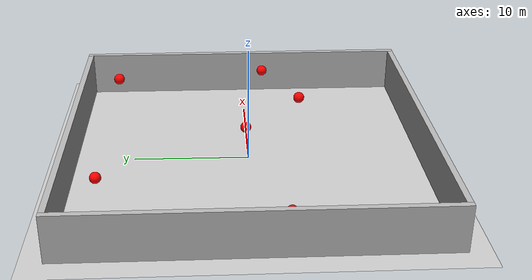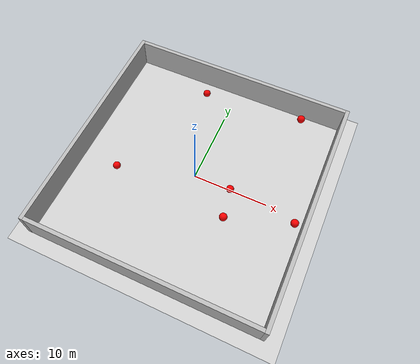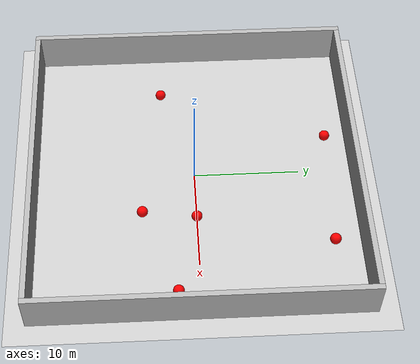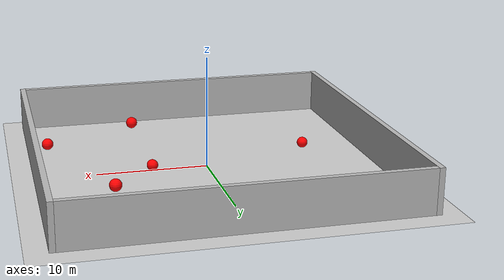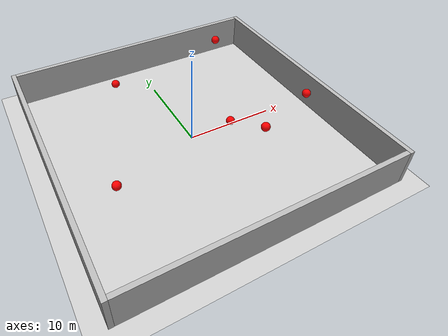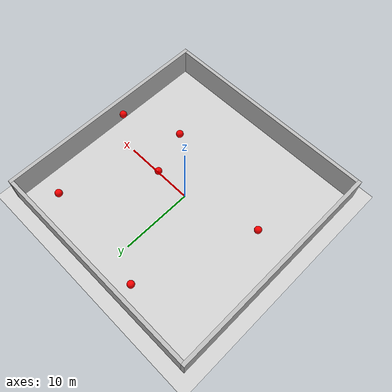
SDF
<?xml version="1.0"?>
<sdf version="1.4">
  <world name="default">
    <include>
      <uri>model://ground_plane</uri>
    </include>
    <include>
      <uri>model://sun</uri>
    </include>
    <model name="north_wall">
      <pose>15.25 0 2  0 0 0</pose>
      <static>true</static>
      <link name="body">
		<collision name="colN">
          <geometry>
            <box><size>0.5 31 4</size></box>
          </geometry>
        </collision>
        <visual name="visual">
          <geometry>
            <box><size>0.5 31 4</size></box>
          </geometry>
        </visual>
      </link>
    </model>

	<model name="south_wall">
      <pose>-15.25 0 2  0 0 0</pose>
      <static>true</static>
      <link name="body">
		<collision name="colS">
          <geometry>
            <box><size>0.5 31 4</size></box>
          </geometry>
        </collision>
        <visual name="visual">
          <geometry>
            <box><size>0.5 31 4</size></box>
          </geometry>
        </visual>
      </link>
    </model>

	<model name="west_wall">
      <pose>0 15.25 2  0 0 0</pose>
      <static>true</static>
      <link name="body">
		<collision name="colW">
          <geometry>
            <box><size>30 0.5 4</size></box>
          </geometry>
        </collision>
        <visual name="visual">
          <geometry>
            <box><size>30 0.5 4</size></box>
          </geometry>
        </visual>
      </link>
    </model>

	<model name="east_wall">
      <pose>0 -15.25 2  0 0 0</pose>
      <static>true</static>
      <link name="body">
		<collision name="colE">
          <geometry>
            <box><size>30 0.5 4</size></box>
          </geometry>
        </collision>
        <visual name="visual">
          <geometry>
            <box><size>30 0.5 4</size></box>
          </geometry>
        </visual>
      </link>
    </model>

<model name='Target_1'>
      <link name='link'>
        <pose frame=''>0 0 0 0 -0 0</pose>
        <inertial>
          <mass>1</mass>
          <inertia>
            <ixx>0.1</ixx>
            <ixy>0</ixy>
            <ixz>0</ixz>
            <iyy>0.1</iyy>
            <iyz>0</iyz>
            <izz>0.1</izz>
          </inertia>
          <pose frame=''>0 0 0 0 -0 0</pose>
        </inertial>
        <self_collide>0</self_collide>
        <kinematic>0</kinematic>
        <gravity>0</gravity>
        <visual name='visual'>
          <geometry>
            <sphere>
              <radius>0.5</radius>
            </sphere>
          </geometry>
          <material>
            <script>
              <name>Gazebo/Grey</name>
              <uri>file://media/materials/scripts/gazebo.material</uri>
            </script>
            <ambient>1 0 0 1</ambient>
            <diffuse>1 0 0 1</diffuse>
            <specular>0.01 0.01 0.01 1</specular>
            <emissive>0 0 0 1</emissive>
            <shader type='vertex'>
              <normal_map>__default__</normal_map>
            </shader>
          </material>
          <pose frame=''>0 0 0 0 -0 0</pose>
          <cast_shadows>1</cast_shadows>
          <transparency>0</transparency>
        </visual>
        <collision name='collision'>
          <laser_retro>0</laser_retro>
          <max_contacts>10</max_contacts>
          <pose frame=''>0 0 0 0 -0 0</pose>
          <geometry>
            <sphere>
              <radius>0.5</radius>
            </sphere>
          </geometry>
          <surface>
            <friction>
              <ode>
                <mu>1</mu>
                <mu2>1</mu2>
                <fdir1>0 0 0</fdir1>
                <slip1>0</slip1>
                <slip2>0</slip2>
              </ode>
              <torsional>
                <coefficient>1</coefficient>
                <patch_radius>0</patch_radius>
                <surface_radius>0</surface_radius>
                <use_patch_radius>1</use_patch_radius>
                <ode>
                  <slip>0</slip>
                </ode>
              </torsional>
            </friction>
            <bounce>
              <restitution_coefficient>0</restitution_coefficient>
              <threshold>1e+06</threshold>
            </bounce>
            <contact>
              <collide_without_contact>0</collide_without_contact>
              <collide_without_contact_bitmask>1</collide_without_contact_bitmask>
              <collide_bitmask>1</collide_bitmask>
              <ode>
                <soft_cfm>0</soft_cfm>
                <soft_erp>0.2</soft_erp>
                <kp>1e+13</kp>
                <kd>1</kd>
                <max_vel>0.01</max_vel>
                <min_depth>0</min_depth>
              </ode>
              <bullet>
                <split_impulse>1</split_impulse>
                <split_impulse_penetration_threshold>-0.01</split_impulse_penetration_threshold>
                <soft_cfm>0</soft_cfm>
                <soft_erp>0.2</soft_erp>
                <kp>1e+13</kp>
                <kd>1</kd>
              </bullet>
            </contact>
          </surface>
        </collision>
      </link>
      <static>0</static>
      <allow_auto_disable>1</allow_auto_disable>
      <pose frame=''>5.0 0.0 0.5 0 -0 0</pose>
    </model>
    <model name='Target_2'>
      <link name='link'>
        <pose frame=''>0 0 0 0 -0 0</pose>
        <inertial>
          <mass>1</mass>
          <inertia>
            <ixx>0.1</ixx>
            <ixy>0</ixy>
            <ixz>0</ixz>
            <iyy>0.1</iyy>
            <iyz>0</iyz>
            <izz>0.1</izz>
          </inertia>
          <pose frame=''>0 0 0 0 -0 0</pose>
        </inertial>
        <self_collide>0</self_collide>
        <kinematic>0</kinematic>
        <gravity>0</gravity>
        <visual name='visual'>
          <geometry>
            <sphere>
              <radius>0.5</radius>
            </sphere>
          </geometry>
          <material>
            <script>
              <name>Gazebo/Grey</name>
              <uri>file://media/materials/scripts/gazebo.material</uri>
            </script>
            <ambient>1 0 0 1</ambient>
            <diffuse>1 0 0 1</diffuse>
            <specular>0.01 0.01 0.01 1</specular>
            <emissive>0 0 0 1</emissive>
            <shader type='vertex'>
              <normal_map>__default__</normal_map>
            </shader>
          </material>
          <pose frame=''>0 0 0 0 -0 0</pose>
          <cast_shadows>1</cast_shadows>
          <transparency>0</transparency>
        </visual>
        <collision name='collision'>
          <laser_retro>0</laser_retro>
          <max_contacts>10</max_contacts>
          <pose frame=''>0 0 0 0 -0 0</pose>
          <geometry>
            <sphere>
              <radius>0.5</radius>
            </sphere>
          </geometry>
          <surface>
            <friction>
              <ode>
                <mu>1</mu>
                <mu2>1</mu2>
                <fdir1>0 0 0</fdir1>
                <slip1>0</slip1>
                <slip2>0</slip2>
              </ode>
              <torsional>
                <coefficient>1</coefficient>
                <patch_radius>0</patch_radius>
                <surface_radius>0</surface_radius>
                <use_patch_radius>1</use_patch_radius>
                <ode>
                  <slip>0</slip>
                </ode>
              </torsional>
            </friction>
            <bounce>
              <restitution_coefficient>0</restitution_coefficient>
              <threshold>1e+06</threshold>
            </bounce>
            <contact>
              <collide_without_contact>0</collide_without_contact>
              <collide_without_contact_bitmask>1</collide_without_contact_bitmask>
              <collide_bitmask>1</collide_bitmask>
              <ode>
                <soft_cfm>0</soft_cfm>
                <soft_erp>0.2</soft_erp>
                <kp>1e+13</kp>
                <kd>1</kd>
                <max_vel>0.01</max_vel>
                <min_depth>0</min_depth>
              </ode>
              <bullet>
                <split_impulse>1</split_impulse>
                <split_impulse_penetration_threshold>-0.01</split_impulse_penetration_threshold>
                <soft_cfm>0</soft_cfm>
                <soft_erp>0.2</soft_erp>
                <kp>1e+13</kp>
                <kd>1</kd>
              </bullet>
            </contact>
          </surface>
        </collision>
      </link>
      <static>0</static>
      <allow_auto_disable>1</allow_auto_disable>
      <pose frame=''>-4.0 13.0 0.5 0 -0 0</pose>
    </model>
    <model name='Target_3'>
      <link name='link'>
        <pose frame=''>0 0 0 0 -0 0</pose>
        <inertial>
          <mass>1</mass>
          <inertia>
            <ixx>0.1</ixx>
            <ixy>0</ixy>
            <ixz>0</ixz>
            <iyy>0.1</iyy>
            <iyz>0</iyz>
            <izz>0.1</izz>
          </inertia>
          <pose frame=''>0 0 0 0 -0 0</pose>
        </inertial>
        <self_collide>0</self_collide>
        <kinematic>0</kinematic>
        <gravity>0</gravity>
        <visual name='visual'>
          <geometry>
            <sphere>
              <radius>0.5</radius>
            </sphere>
          </geometry>
          <material>
            <script>
              <name>Gazebo/Grey</name>
              <uri>file://media/materials/scripts/gazebo.material</uri>
            </script>
            <ambient>1 0 0 1</ambient>
            <diffuse>1 0 0 1</diffuse>
            <specular>0.01 0.01 0.01 1</specular>
            <emissive>0 0 0 1</emissive>
            <shader type='vertex'>
              <normal_map>__default__</normal_map>
            </shader>
          </material>
          <pose frame=''>0 0 0 0 -0 0</pose>
          <cast_shadows>1</cast_shadows>
          <transparency>0</transparency>
        </visual>
        <collision name='collision'>
          <laser_retro>0</laser_retro>
          <max_contacts>10</max_contacts>
          <pose frame=''>0 0 0 0 -0 0</pose>
          <geometry>
            <sphere>
              <radius>0.5</radius>
            </sphere>
          </geometry>
          <surface>
            <friction>
              <ode>
                <mu>1</mu>
                <mu2>1</mu2>
                <fdir1>0 0 0</fdir1>
                <slip1>0</slip1>
                <slip2>0</slip2>
              </ode>
              <torsional>
                <coefficient>1</coefficient>
                <patch_radius>0</patch_radius>
                <surface_radius>0</surface_radius>
                <use_patch_radius>1</use_patch_radius>
                <ode>
                  <slip>0</slip>
                </ode>
              </torsional>
            </friction>
            <bounce>
              <restitution_coefficient>0</restitution_coefficient>
              <threshold>1e+06</threshold>
            </bounce>
            <contact>
              <collide_without_contact>0</collide_without_contact>
              <collide_without_contact_bitmask>1</collide_without_contact_bitmask>
              <collide_bitmask>1</collide_bitmask>
              <ode>
                <soft_cfm>0</soft_cfm>
                <soft_erp>0.2</soft_erp>
                <kp>1e+13</kp>
                <kd>1</kd>
                <max_vel>0.01</max_vel>
                <min_depth>0</min_depth>
              </ode>
              <bullet>
                <split_impulse>1</split_impulse>
                <split_impulse_penetration_threshold>-0.01</split_impulse_penetration_threshold>
                <soft_cfm>0</soft_cfm>
                <soft_erp>0.2</soft_erp>
                <kp>1e+13</kp>
                <kd>1</kd>
              </bullet>
            </contact>
          </surface>
        </collision>
      </link>
      <static>0</static>
      <allow_auto_disable>1</allow_auto_disable>
      <pose frame=''>10.0 12.0 3.5 0 -0 0</pose>
    </model>
    <model name='Target_4'>
      <link name='link'>
        <pose frame=''>0 0 0 0 -0 0</pose>
        <inertial>
          <mass>1</mass>
          <inertia>
            <ixx>0.1</ixx>
            <ixy>0</ixy>
            <ixz>0</ixz>
            <iyy>0.1</iyy>
            <iyz>0</iyz>
            <izz>0.1</izz>
          </inertia>
          <pose frame=''>0 0 0 0 -0 0</pose>
        </inertial>
        <self_collide>0</self_collide>
        <kinematic>0</kinematic>
        <gravity>0</gravity>
        <visual name='visual'>
          <geometry>
            <sphere>
              <radius>0.5</radius>
            </sphere>
          </geometry>
          <material>
            <script>
              <name>Gazebo/Grey</name>
              <uri>file://media/materials/scripts/gazebo.material</uri>
            </script>
            <ambient>1 0 0 1</ambient>
            <diffuse>1 0.0 0.0 1</diffuse>
            <specular>0.01 0.01 0.01 1</specular>
            <emissive>0 0 0 1</emissive>
            <shader type='vertex'>
              <normal_map>__default__</normal_map>
            </shader>
          </material>
          <pose frame=''>0 0 0 0 -0 0</pose>
          <cast_shadows>1</cast_shadows>
          <transparency>0</transparency>
        </visual>
        <collision name='collision'>
          <laser_retro>0</laser_retro>
          <max_contacts>10</max_contacts>
          <pose frame=''>0 0 0 0 -0 0</pose>
          <geometry>
            <sphere>
              <radius>0.5</radius>
            </sphere>
          </geometry>
          <surface>
            <friction>
              <ode>
                <mu>1</mu>
                <mu2>1</mu2>
                <fdir1>0 0 0</fdir1>
                <slip1>0</slip1>
                <slip2>0</slip2>
              </ode>
              <torsional>
                <coefficient>1</coefficient>
                <patch_radius>0</patch_radius>
                <surface_radius>0</surface_radius>
                <use_patch_radius>1</use_patch_radius>
                <ode>
                  <slip>0</slip>
                </ode>
              </torsional>
            </friction>
            <bounce>
              <restitution_coefficient>0</restitution_coefficient>
              <threshold>1e+06</threshold>
            </bounce>
            <contact>
              <collide_without_contact>0</collide_without_contact>
              <collide_without_contact_bitmask>1</collide_without_contact_bitmask>
              <collide_bitmask>1</collide_bitmask>
              <ode>
                <soft_cfm>0</soft_cfm>
                <soft_erp>0.2</soft_erp>
                <kp>1e+13</kp>
                <kd>1</kd>
                <max_vel>0.01</max_vel>
                <min_depth>0</min_depth>
              </ode>
              <bullet>
                <split_impulse>1</split_impulse>
                <split_impulse_penetration_threshold>-0.01</split_impulse_penetration_threshold>
                <soft_cfm>0</soft_cfm>
                <soft_erp>0.2</soft_erp>
                <kp>1e+13</kp>
                <kd>1</kd>
              </bullet>
            </contact>
          </surface>
        </collision>
      </link>
      <static>0</static>
      <allow_auto_disable>1</allow_auto_disable>
      <pose frame=''>6.0 -5.0 3.0 0 -0 0</pose>
    </model>
    <model name='Target_5'>
      <link name='link'>
        <pose frame=''>0 0 0 0 -0 0</pose>
        <inertial>
          <mass>1</mass>
          <inertia>
            <ixx>0.1</ixx>
            <ixy>0</ixy>
            <ixz>0</ixz>
            <iyy>0.1</iyy>
            <iyz>0</iyz>
            <izz>0.1</izz>
          </inertia>
          <pose frame=''>0 0 0 0 -0 0</pose>
        </inertial>
        <self_collide>0</self_collide>
        <kinematic>0</kinematic>
        <gravity>0</gravity>
        <visual name='visual'>
          <geometry>
            <sphere>
              <radius>0.5</radius>
            </sphere>
          </geometry>
          <material>
            <script>
              <name>Gazebo/Grey</name>
              <uri>file://media/materials/scripts/gazebo.material</uri>
            </script>
            <ambient>1 0 0 1</ambient>
            <diffuse>1 0 0 1</diffuse>
            <specular>0.01 0.01 0.01 1</specular>
            <emissive>0 0 0 1</emissive>
            <shader type='vertex'>
              <normal_map>__default__</normal_map>
            </shader>
          </material>
          <pose frame=''>0 0 0 0 -0 0</pose>
          <cast_shadows>1</cast_shadows>
          <transparency>0</transparency>
        </visual>
        <collision name='collision'>
          <laser_retro>0</laser_retro>
          <max_contacts>10</max_contacts>
          <pose frame=''>0 0 0 0 -0 0</pose>
          <geometry>
            <sphere>
              <radius>0.5</radius>
            </sphere>
          </geometry>
          <surface>
            <friction>
              <ode>
                <mu>1</mu>
                <mu2>1</mu2>
                <fdir1>0 0 0</fdir1>
                <slip1>0</slip1>
                <slip2>0</slip2>
              </ode>
              <torsional>
                <coefficient>1</coefficient>
                <patch_radius>0</patch_radius>
                <surface_radius>0</surface_radius>
                <use_patch_radius>1</use_patch_radius>
                <ode>
                  <slip>0</slip>
                </ode>
              </torsional>
            </friction>
            <bounce>
              <restitution_coefficient>0</restitution_coefficient>
              <threshold>1e+06</threshold>
            </bounce>
            <contact>
              <collide_without_contact>0</collide_without_contact>
              <collide_without_contact_bitmask>1</collide_without_contact_bitmask>
              <collide_bitmask>1</collide_bitmask>
              <ode>
                <soft_cfm>0</soft_cfm>
                <soft_erp>0.2</soft_erp>
                <kp>1e+13</kp>
                <kd>1</kd>
                <max_vel>0.01</max_vel>
                <min_depth>0</min_depth>
              </ode>
              <bullet>
                <split_impulse>1</split_impulse>
                <split_impulse_penetration_threshold>-0.01</split_impulse_penetration_threshold>
                <soft_cfm>0</soft_cfm>
                <soft_erp>0.2</soft_erp>
                <kp>1e+13</kp>
                <kd>1</kd>
              </bullet>
            </contact>
          </surface>
        </collision>
      </link>
      <static>0</static>
      <allow_auto_disable>1</allow_auto_disable>
      <pose frame=''>-10.0 -3.0 0.5 0 -0 0</pose>
    </model>
    <model name='Target_6'>
      <link name='link'>
        <pose frame=''>0 0 0 0 -0 0</pose>
        <inertial>
          <mass>1</mass>
          <inertia>
            <ixx>0.1</ixx>
            <ixy>0</ixy>
            <ixz>0</ixz>
            <iyy>0.1</iyy>
            <iyz>0</iyz>
            <izz>0.1</izz>
          </inertia>
          <pose frame=''>0 0 0 0 -0 0</pose>
        </inertial>
        <self_collide>0</self_collide>
        <kinematic>0</kinematic>
        <gravity>0</gravity>
        <visual name='visual'>
          <geometry>
            <sphere>
              <radius>0.5</radius>
            </sphere>
          </geometry>
          <material>
            <script>
              <name>Gazebo/Grey</name>
              <uri>file://media/materials/scripts/gazebo.material</uri>
            </script>
            <ambient>1 0 0 1</ambient>
            <diffuse>1 0 0 1</diffuse>
            <specular>0.01 0.01 0.01 1</specular>
            <emissive>0 0 0 1</emissive>
            <shader type='vertex'>
              <normal_map>__default__</normal_map>
            </shader>
          </material>
          <pose frame=''>0 0 0 0 -0 0</pose>
          <cast_shadows>1</cast_shadows>
          <transparency>0</transparency>
        </visual>
        <collision name='collision'>
          <laser_retro>0</laser_retro>
          <max_contacts>10</max_contacts>
          <pose frame=''>0 0 0 0 -0 0</pose>
          <geometry>
            <sphere>
              <radius>0.5</radius>
            </sphere>
          </geometry>
          <surface>
            <friction>
              <ode>
                <mu>1</mu>
                <mu2>1</mu2>
                <fdir1>0 0 0</fdir1>
                <slip1>0</slip1>
                <slip2>0</slip2>
              </ode>
              <torsional>
                <coefficient>1</coefficient>
                <patch_radius>0</patch_radius>
                <surface_radius>0</surface_radius>
                <use_patch_radius>1</use_patch_radius>
                <ode>
                  <slip>0</slip>
                </ode>
              </torsional>
            </friction>
            <bounce>
              <restitution_coefficient>0</restitution_coefficient>
              <threshold>1e+06</threshold>
            </bounce>
            <contact>
              <collide_without_contact>0</collide_without_contact>
              <collide_without_contact_bitmask>1</collide_without_contact_bitmask>
              <collide_bitmask>1</collide_bitmask>
              <ode>
                <soft_cfm>0</soft_cfm>
                <soft_erp>0.2</soft_erp>
                <kp>1e+13</kp>
                <kd>1</kd>
                <max_vel>0.01</max_vel>
                <min_depth>0</min_depth>
              </ode>
              <bullet>
                <split_impulse>1</split_impulse>
                <split_impulse_penetration_threshold>-0.01</split_impulse_penetration_threshold>
                <soft_cfm>0</soft_cfm>
                <soft_erp>0.2</soft_erp>
                <kp>1e+13</kp>
                <kd>1</kd>
              </bullet>
            </contact>
          </surface>
        </collision>
      </link>
      <static>0</static>
      <allow_auto_disable>1</allow_auto_disable>
      <pose frame=''>14.0 -2.0 2.5 0 -0 0</pose>
    </model>

  </world>
</sdf>
